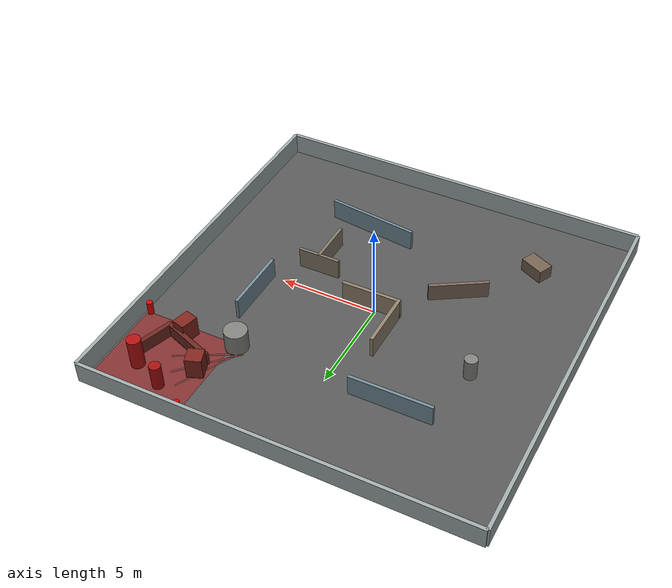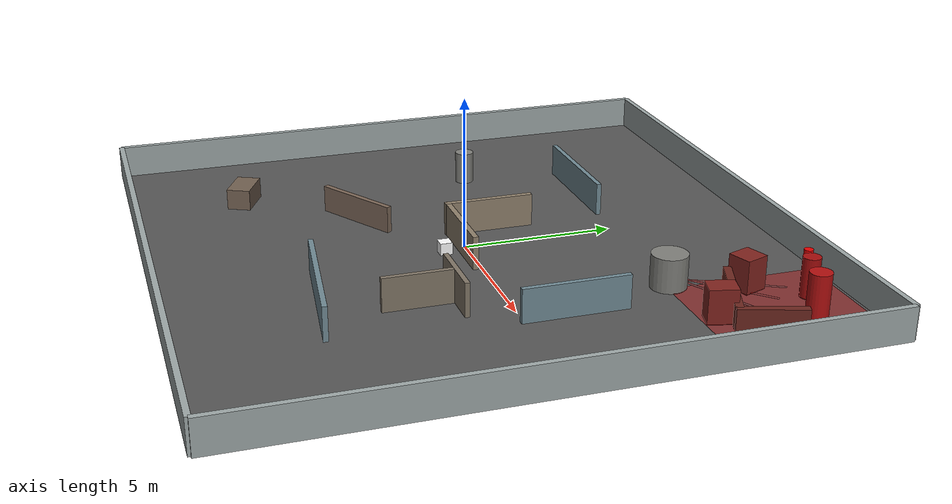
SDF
<?xml version="1.0" ?>
<sdf version="1.6">
  <world name="odin_rescue_20x20_c">
    <plugin name="gazebo_ros_init" filename="libgazebo_ros_init.so"/>
    <plugin name="gazebo_ros_factory" filename="libgazebo_ros_factory.so"/>
    <plugin name="gazebo_ros_state" filename="libgazebo_ros_state.so"/>

    <include>
      <uri>model://sun</uri>
    </include>

    <model name="flat_floor">
      <static>true</static>
      <link name="link">
        <collision name="collision">
          <geometry>
            <box>
              <size>20.0 20.0 0.04</size>
            </box>
          </geometry>
          <pose>0 0 -0.02 0 0 0</pose>
        </collision>
        <visual name="visual">
          <geometry>
            <box>
              <size>20.0 20.0 0.04</size>
            </box>
          </geometry>
          <pose>0 0 -0.02 0 0 0</pose>
          <material>
            <ambient>0.34 0.34 0.34 1</ambient>
            <diffuse>0.34 0.34 0.34 1</diffuse>
          </material>
        </visual>
      </link>
    </model>

    <model name="outer_wall_north">
      <static>true</static>
      <pose>0 10 0.55 0 0 0</pose>
      <link name="link">
        <collision name="collision"><geometry><box><size>20.0 0.18 1.1</size></box></geometry></collision>
        <visual name="visual"><geometry><box><size>20.0 0.18 1.1</size></box></geometry><material><ambient>0.62 0.66 0.66 1</ambient><diffuse>0.62 0.66 0.66 1</diffuse></material></visual>
      </link>
    </model>

    <model name="outer_wall_south">
      <static>true</static>
      <pose>0 -10 0.55 0 0 0</pose>
      <link name="link">
        <collision name="collision"><geometry><box><size>20.0 0.18 1.1</size></box></geometry></collision>
        <visual name="visual"><geometry><box><size>20.0 0.18 1.1</size></box></geometry><material><ambient>0.62 0.66 0.66 1</ambient><diffuse>0.62 0.66 0.66 1</diffuse></material></visual>
      </link>
    </model>

    <model name="outer_wall_east">
      <static>true</static>
      <pose>10 0 0.55 0 0 0</pose>
      <link name="link">
        <collision name="collision"><geometry><box><size>0.18 20.0 1.1</size></box></geometry></collision>
        <visual name="visual"><geometry><box><size>0.18 20.0 1.1</size></box></geometry><material><ambient>0.62 0.66 0.66 1</ambient><diffuse>0.62 0.66 0.66 1</diffuse></material></visual>
      </link>
    </model>

    <model name="outer_wall_west">
      <static>true</static>
      <pose>-10 0 0.55 0 0 0</pose>
      <link name="link">
        <collision name="collision"><geometry><box><size>0.18 20.0 1.1</size></box></geometry></collision>
        <visual name="visual"><geometry><box><size>0.18 20.0 1.1</size></box></geometry><material><ambient>0.62 0.66 0.66 1</ambient><diffuse>0.62 0.66 0.66 1</diffuse></material></visual>
      </link>
    </model>

    <model name="north_short_wall">
      <static>true</static>
      <pose>-3.4 5.2 0.55 0 0 0</pose>
      <link name="link">
        <collision name="collision"><geometry><box><size>4.2 0.16 1.1</size></box></geometry></collision>
        <visual name="visual"><geometry><box><size>4.2 0.16 1.1</size></box></geometry><material><ambient>0.44 0.54 0.58 1</ambient><diffuse>0.44 0.54 0.58 1</diffuse></material></visual>
      </link>
    </model>

    <model name="east_short_wall">
      <static>true</static>
      <pose>5.7 1.6 0.55 0 0 1.5708</pose>
      <link name="link">
        <collision name="collision"><geometry><box><size>3.4 0.16 1.1</size></box></geometry></collision>
        <visual name="visual"><geometry><box><size>3.4 0.16 1.1</size></box></geometry><material><ambient>0.44 0.54 0.58 1</ambient><diffuse>0.44 0.54 0.58 1</diffuse></material></visual>
      </link>
    </model>

    <model name="south_short_wall">
      <static>true</static>
      <pose>2.8 -5.4 0.55 0 0 -0.12</pose>
      <link name="link">
        <collision name="collision"><geometry><box><size>4.8 0.16 1.1</size></box></geometry></collision>
        <visual name="visual"><geometry><box><size>4.8 0.16 1.1</size></box></geometry><material><ambient>0.44 0.54 0.58 1</ambient><diffuse>0.44 0.54 0.58 1</diffuse></material></visual>
      </link>
    </model>

    <model name="central_landmark_l_vertical">
      <static>true</static>
      <pose>-1.2 1.2 0.55 0 0 0</pose>
      <link name="link">
        <collision name="collision"><geometry><box><size>0.18 3.0 1.1</size></box></geometry></collision>
        <visual name="visual"><geometry><box><size>0.18 3.0 1.1</size></box></geometry><material><ambient>0.56 0.50 0.42 1</ambient><diffuse>0.56 0.50 0.42 1</diffuse></material></visual>
      </link>
    </model>

    <model name="central_landmark_l_horizontal">
      <static>true</static>
      <pose>0.25 -0.2 0.55 0 0 0</pose>
      <link name="link">
        <collision name="collision"><geometry><box><size>3.1 0.18 1.1</size></box></geometry></collision>
        <visual name="visual"><geometry><box><size>3.1 0.18 1.1</size></box></geometry><material><ambient>0.56 0.50 0.42 1</ambient><diffuse>0.56 0.50 0.42 1</diffuse></material></visual>
      </link>
    </model>

    <include>
      <name>hostage_aruco_marker_0</name>
      <uri>model://aruco_marker_0</uri>
      <pose>0.25 -0.75 0.20 0 0 0</pose>
    </include>

    <model name="east_landmark_t_vertical">
      <static>true</static>
      <pose>3.8 -2.6 0.55 0 0 0</pose>
      <link name="link">
        <collision name="collision"><geometry><box><size>0.16 2.3 1.1</size></box></geometry></collision>
        <visual name="visual"><geometry><box><size>0.16 2.3 1.1</size></box></geometry><material><ambient>0.50 0.46 0.40 1</ambient><diffuse>0.50 0.46 0.40 1</diffuse></material></visual>
      </link>
    </model>

    <model name="east_landmark_t_horizontal">
      <static>true</static>
      <pose>3.8 -1.45 0.55 0 0 0</pose>
      <link name="link">
        <collision name="collision"><geometry><box><size>2.2 0.16 1.1</size></box></geometry></collision>
        <visual name="visual"><geometry><box><size>2.2 0.16 1.1</size></box></geometry><material><ambient>0.50 0.46 0.40 1</ambient><diffuse>0.50 0.46 0.40 1</diffuse></material></visual>
      </link>
    </model>

    <model name="diagonal_debris_marker">
      <static>true</static>
      <pose>-3.2 -2.8 0.45 0 0 0.55</pose>
      <link name="link">
        <collision name="collision"><geometry><box><size>3.0 0.18 0.9</size></box></geometry></collision>
        <visual name="visual"><geometry><box><size>3.0 0.18 0.9</size></box></geometry><material><ambient>0.48 0.40 0.34 1</ambient><diffuse>0.48 0.40 0.34 1</diffuse></material></visual>
      </link>
    </model>

    <model name="column_west_small">
      <static>true</static>
      <pose>-5.8 1.8 0.55 0 0 0</pose>
      <link name="link">
        <collision name="collision"><geometry><cylinder><radius>0.32</radius><length>1.1</length></cylinder></geometry></collision>
        <visual name="visual"><geometry><cylinder><radius>0.32</radius><length>1.1</length></cylinder></geometry><material><ambient>0.50 0.50 0.48 1</ambient><diffuse>0.50 0.50 0.48 1</diffuse></material></visual>
      </link>
    </model>

    <model name="column_northeast_large">
      <static>true</static>
      <pose>4.7 5.0 0.55 0 0 0</pose>
      <link name="link">
        <collision name="collision"><geometry><cylinder><radius>0.58</radius><length>1.1</length></cylinder></geometry></collision>
        <visual name="visual"><geometry><cylinder><radius>0.58</radius><length>1.1</length></cylinder></geometry><material><ambient>0.50 0.50 0.48 1</ambient><diffuse>0.50 0.50 0.48 1</diffuse></material></visual>
      </link>
    </model>

    <model name="debris_box_southwest">
      <static>true</static>
      <pose>-6.0 -6.2 0.35 0 0 -0.45</pose>
      <link name="link">
        <collision name="collision"><geometry><box><size>1.3 0.8 0.7</size></box></geometry></collision>
        <visual name="visual"><geometry><box><size>1.3 0.8 0.7</size></box></geometry><material><ambient>0.45 0.38 0.32 1</ambient><diffuse>0.45 0.38 0.32 1</diffuse></material></visual>
      </link>
    </model>

    <model name="enemy_red_zone_floor">
      <static>true</static>
      <pose>7.35 7.35 0.011 0 0 0</pose>
      <link name="link">
        <visual name="visual">
          <geometry><box><size>4.9 4.9 0.01</size></box></geometry>
          <material>
            <ambient>0.55 0.04 0.04 0.45</ambient>
            <diffuse>0.75 0.05 0.05 0.45</diffuse>
          </material>
          <transparency>0.55</transparency>
        </visual>
      </link>
    </model>

    <model name="enemy_stronghold_tower_a">
      <static>true</static>
      <pose>8.2 8.0 0.8 0 0 0</pose>
      <link name="link">
        <collision name="base_collision"><geometry><cylinder><radius>0.34</radius><length>1.6</length></cylinder></geometry></collision>
        <visual name="base_visual"><geometry><cylinder><radius>0.34</radius><length>1.6</length></cylinder></geometry><material><ambient>0.60 0.05 0.05 1</ambient><diffuse>0.70 0.06 0.06 1</diffuse></material></visual>
      </link>
    </model>

    <model name="enemy_stronghold_tower_b">
      <static>true</static>
      <pose>6.6 8.7 0.65 0 0 0</pose>
      <link name="link">
        <collision name="base_collision"><geometry><cylinder><radius>0.28</radius><length>1.3</length></cylinder></geometry></collision>
        <visual name="base_visual"><geometry><cylinder><radius>0.28</radius><length>1.3</length></cylinder></geometry><material><ambient>0.55 0.04 0.04 1</ambient><diffuse>0.65 0.05 0.05 1</diffuse></material></visual>
      </link>
    </model>

    <model name="enemy_sentry_post_west">
      <static>true</static>
      <pose>5.5 7.2 0.55 0 0 0.35</pose>
      <link name="link">
        <collision name="collision"><geometry><box><size>0.8 0.8 1.1</size></box></geometry></collision>
        <visual name="visual"><geometry><box><size>0.8 0.8 1.1</size></box></geometry><material><ambient>0.42 0.12 0.10 1</ambient><diffuse>0.50 0.14 0.12 1</diffuse></material></visual>
      </link>
    </model>

    <model name="enemy_sentry_post_south">
      <static>true</static>
      <pose>7.2 5.45 0.55 0 0 -0.25</pose>
      <link name="link">
        <collision name="collision"><geometry><box><size>0.7 0.9 1.1</size></box></geometry></collision>
        <visual name="visual"><geometry><box><size>0.7 0.9 1.1</size></box></geometry><material><ambient>0.42 0.12 0.10 1</ambient><diffuse>0.50 0.14 0.12 1</diffuse></material></visual>
      </link>
    </model>

    <model name="enemy_barricade_outer">
      <static>true</static>
      <pose>6.6 6.15 0.35 0 0 -0.35</pose>
      <link name="link">
        <collision name="collision"><geometry><box><size>2.8 0.25 0.7</size></box></geometry></collision>
        <visual name="visual"><geometry><box><size>2.8 0.25 0.7</size></box></geometry><material><ambient>0.35 0.13 0.11 1</ambient><diffuse>0.42 0.15 0.12 1</diffuse></material></visual>
      </link>
    </model>

    <model name="enemy_barricade_inner">
      <static>true</static>
      <pose>8.25 6.55 0.35 0 0 1.25</pose>
      <link name="link">
        <collision name="collision"><geometry><box><size>2.1 0.24 0.7</size></box></geometry></collision>
        <visual name="visual"><geometry><box><size>2.1 0.24 0.7</size></box></geometry><material><ambient>0.35 0.13 0.11 1</ambient><diffuse>0.42 0.15 0.12 1</diffuse></material></visual>
      </link>
    </model>

    <model name="enemy_zone_corner_marker_sw">
      <static>true</static>
      <pose>4.9 4.9 0.35 0 0 0</pose>
      <link name="link">
        <collision name="collision"><geometry><cylinder><radius>0.15</radius><length>0.7</length></cylinder></geometry></collision>
        <visual name="visual"><geometry><cylinder><radius>0.15</radius><length>0.7</length></cylinder></geometry><material><ambient>0.80 0.00 0.00 1</ambient><diffuse>0.90 0.00 0.00 1</diffuse></material></visual>
      </link>
    </model>

    <model name="enemy_zone_corner_marker_nw">
      <static>true</static>
      <pose>4.9 9.65 0.35 0 0 0</pose>
      <link name="link">
        <collision name="collision"><geometry><cylinder><radius>0.15</radius><length>0.7</length></cylinder></geometry></collision>
        <visual name="visual"><geometry><cylinder><radius>0.15</radius><length>0.7</length></cylinder></geometry><material><ambient>0.80 0.00 0.00 1</ambient><diffuse>0.90 0.00 0.00 1</diffuse></material></visual>
      </link>
    </model>

    <model name="enemy_zone_corner_marker_se">
      <static>true</static>
      <pose>9.65 4.9 0.35 0 0 0</pose>
      <link name="link">
        <collision name="collision"><geometry><cylinder><radius>0.15</radius><length>0.7</length></cylinder></geometry></collision>
        <visual name="visual"><geometry><cylinder><radius>0.15</radius><length>0.7</length></cylinder></geometry><material><ambient>0.80 0.00 0.00 1</ambient><diffuse>0.90 0.00 0.00 1</diffuse></material></visual>
      </link>
    </model>

    <model name="enemy_vision_ray_center">
      <static>true</static>
      <pose>5.35 6.55 0.035 0 0 -2.35</pose>
      <link name="link">
        <visual name="visual">
          <geometry><box><size>3.4 0.08 0.02</size></box></geometry>
          <material>
            <ambient>1.0 0.0 0.0 0.35</ambient>
            <diffuse>1.0 0.0 0.0 0.35</diffuse>
          </material>
          <transparency>0.65</transparency>
        </visual>
      </link>
    </model>

    <model name="enemy_vision_ray_left">
      <static>true</static>
      <pose>5.2 7.0 0.036 0 0 -2.05</pose>
      <link name="link">
        <visual name="visual">
          <geometry><box><size>3.1 0.07 0.02</size></box></geometry>
          <material>
            <ambient>1.0 0.0 0.0 0.28</ambient>
            <diffuse>1.0 0.0 0.0 0.28</diffuse>
          </material>
          <transparency>0.72</transparency>
        </visual>
      </link>
    </model>

    <model name="enemy_vision_ray_right">
      <static>true</static>
      <pose>5.75 6.18 0.037 0 0 -2.65</pose>
      <link name="link">
        <visual name="visual">
          <geometry><box><size>3.0 0.07 0.02</size></box></geometry>
          <material>
            <ambient>1.0 0.0 0.0 0.28</ambient>
            <diffuse>1.0 0.0 0.0 0.28</diffuse>
          </material>
          <transparency>0.72</transparency>
        </visual>
      </link>
    </model>
  </world>
</sdf>

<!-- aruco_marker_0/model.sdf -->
<sdf version="1.6">
  <model name="aruco_marker_0">
    <static>true</static>
    <link name="link">
      <collision name="collision">
        <geometry>
          <box>
            <size>0.40 0.40 0.40</size>
          </box>
        </geometry>
      </collision>

      <visual name="aruco_front">
        <pose>0.201 0 0 0 1.5708 0</pose>
        <geometry>
          <plane>
            <normal>0 0 1</normal>
            <size>0.40 0.40</size>
          </plane>
        </geometry>
        <material>
          <script>
            <uri>model://aruco_marker_0/materials/scripts</uri>
            <uri>model://aruco_marker_0/materials/textures</uri>
            <name>ODIN/ArucoMarker0</name>
          </script>
          <ambient>1 1 1 1</ambient>
          <diffuse>1 1 1 1</diffuse>
        </material>
      </visual>

      <visual name="aruco_back">
        <pose>-0.201 0 0 0 -1.5708 0</pose>
        <geometry>
          <plane>
            <normal>0 0 1</normal>
            <size>0.40 0.40</size>
          </plane>
        </geometry>
        <material>
          <script>
            <uri>model://aruco_marker_0/materials/scripts</uri>
            <uri>model://aruco_marker_0/materials/textures</uri>
            <name>ODIN/ArucoMarker0</name>
          </script>
          <ambient>1 1 1 1</ambient>
          <diffuse>1 1 1 1</diffuse>
        </material>
      </visual>

      <visual name="aruco_left">
        <pose>0 0.201 0 -1.5708 0 0</pose>
        <geometry>
          <plane>
            <normal>0 0 1</normal>
            <size>0.40 0.40</size>
          </plane>
        </geometry>
        <material>
          <script>
            <uri>model://aruco_marker_0/materials/scripts</uri>
            <uri>model://aruco_marker_0/materials/textures</uri>
            <name>ODIN/ArucoMarker0</name>
          </script>
          <ambient>1 1 1 1</ambient>
          <diffuse>1 1 1 1</diffuse>
        </material>
      </visual>

      <visual name="aruco_right">
        <pose>0 -0.201 0 1.5708 0 0</pose>
        <geometry>
          <plane>
            <normal>0 0 1</normal>
            <size>0.40 0.40</size>
          </plane>
        </geometry>
        <material>
          <script>
            <uri>model://aruco_marker_0/materials/scripts</uri>
            <uri>model://aruco_marker_0/materials/textures</uri>
            <name>ODIN/ArucoMarker0</name>
          </script>
          <ambient>1 1 1 1</ambient>
          <diffuse>1 1 1 1</diffuse>
        </material>
      </visual>

      <visual name="aruco_top">
        <pose>0 0 0.201 0 0 0</pose>
        <geometry>
          <plane>
            <normal>0 0 1</normal>
            <size>0.40 0.40</size>
          </plane>
        </geometry>
        <material>
          <script>
            <uri>model://aruco_marker_0/materials/scripts</uri>
            <uri>model://aruco_marker_0/materials/textures</uri>
            <name>ODIN/ArucoMarker0</name>
          </script>
          <ambient>1 1 1 1</ambient>
          <diffuse>1 1 1 1</diffuse>
        </material>
      </visual>

      <visual name="aruco_bottom">
        <pose>0 0 -0.201 3.1416 0 0</pose>
        <geometry>
          <plane>
            <normal>0 0 1</normal>
            <size>0.40 0.40</size>
          </plane>
        </geometry>
        <material>
          <script>
            <uri>model://aruco_marker_0/materials/scripts</uri>
            <uri>model://aruco_marker_0/materials/textures</uri>
            <name>ODIN/ArucoMarker0</name>
          </script>
          <ambient>1 1 1 1</ambient>
          <diffuse>1 1 1 1</diffuse>
        </material>
      </visual>
    </link>
  </model>
</sdf>
